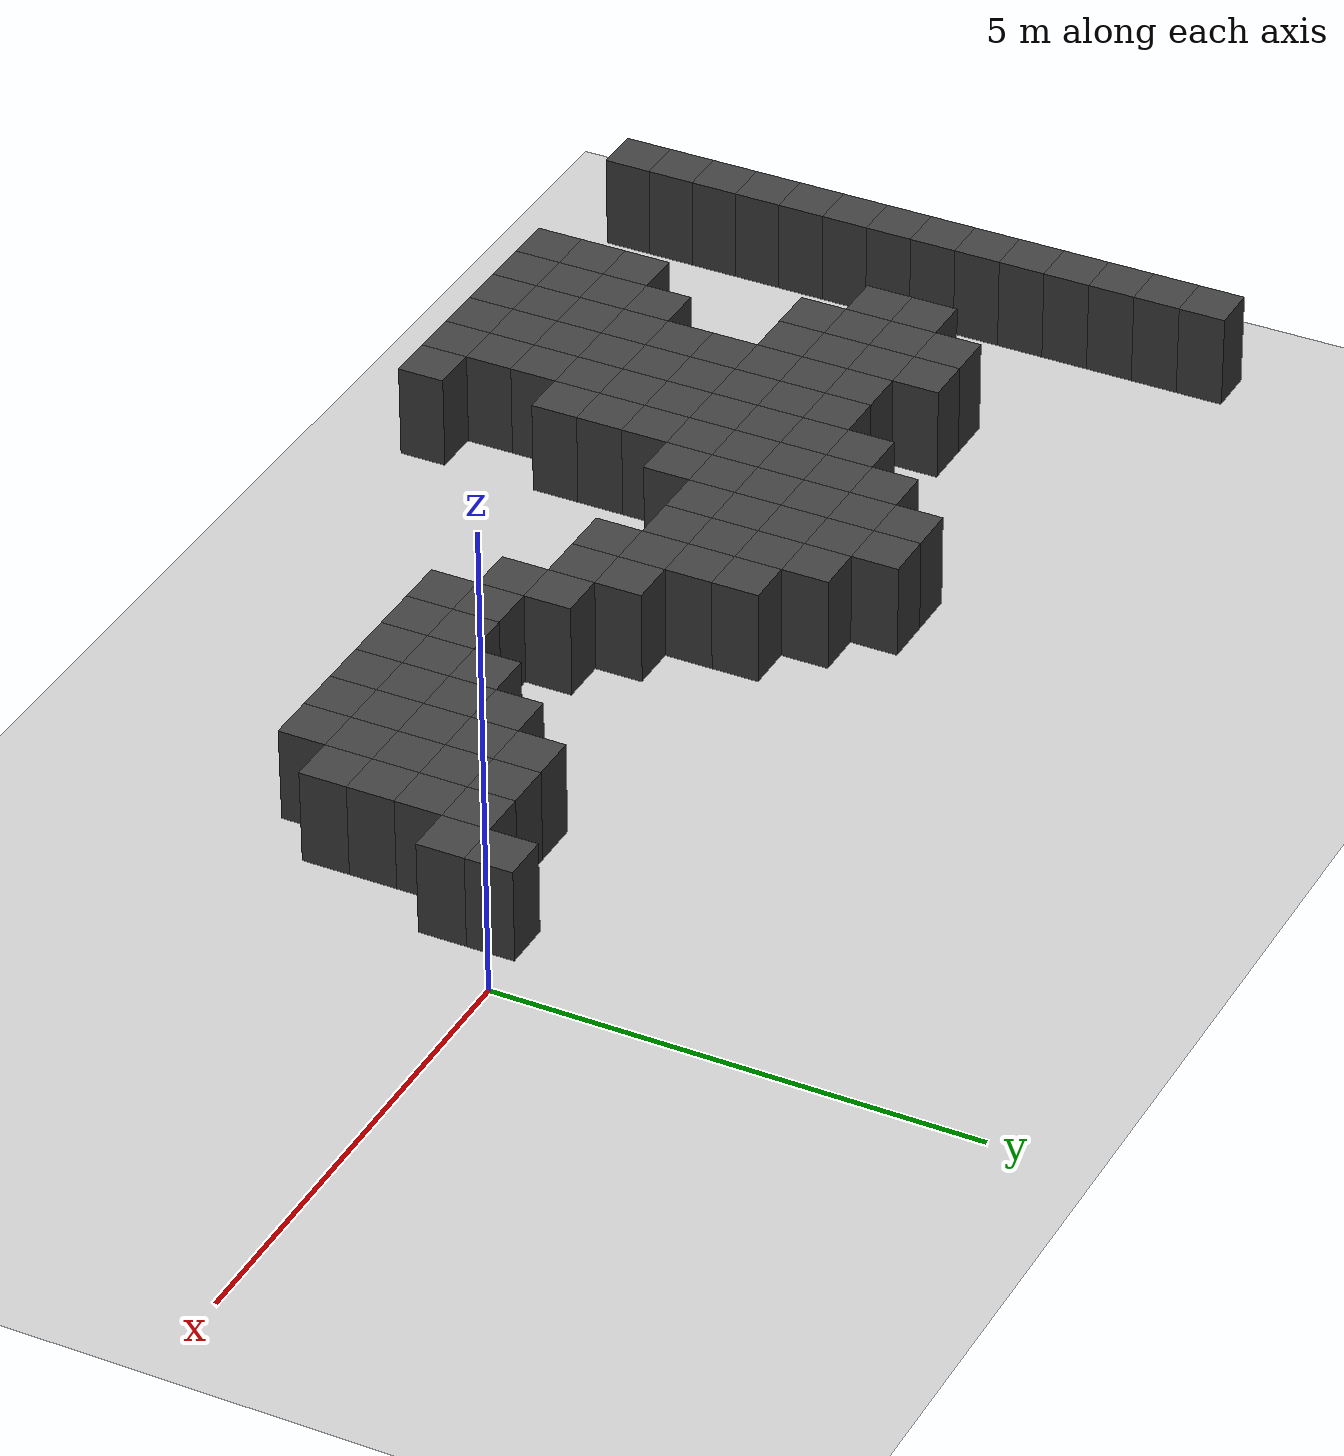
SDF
<sdf version="1.7">
 <world name="map_8074">
  <model name="ground_plane">
   <static>true</static>
   <link name="link">
    <collision name="collision">
     <geometry><plane><normal>0 0 1</normal><size>200 200</size></plane></geometry>
    </collision>
    <visual name="visual">
     <geometry><plane><normal>0 0 1</normal><size>200 200</size></plane></geometry>
     <material><ambient>0.8 0.8 0.8 1</ambient><diffuse>0.8 0.8 0.8 1</diffuse></material>
    </visual>
   </link>
  </model>
  <model name="maze_environment">
   <static>true</static>
   <link name="wall_325">
    <pose>-12.250 1.750 0.500 0 0 0</pose>
    <collision name="col"><geometry><box><size>0.5 0.5 1.0</size></box></geometry></collision>
    <visual name="vis">
     <geometry><box><size>0.5 0.5 1.0</size></box></geometry>
     <material><ambient>0.15 0.15 0.15 1</ambient><diffuse>0.25 0.25 0.25 1</diffuse></material>
    </visual>
   </link>
   <link name="wall_333">
    <pose>-12.250 1.250 0.500 0 0 0</pose>
    <collision name="col"><geometry><box><size>0.5 0.5 1.0</size></box></geometry></collision>
    <visual name="vis">
     <geometry><box><size>0.5 0.5 1.0</size></box></geometry>
     <material><ambient>0.15 0.15 0.15 1</ambient><diffuse>0.25 0.25 0.25 1</diffuse></material>
    </visual>
   </link>
   <link name="wall_338">
    <pose>-12.250 0.750 0.500 0 0 0</pose>
    <collision name="col"><geometry><box><size>0.5 0.5 1.0</size></box></geometry></collision>
    <visual name="vis">
     <geometry><box><size>0.5 0.5 1.0</size></box></geometry>
     <material><ambient>0.15 0.15 0.15 1</ambient><diffuse>0.25 0.25 0.25 1</diffuse></material>
    </visual>
   </link>
   <link name="wall_339">
    <pose>-7.250 0.750 0.500 0 0 0</pose>
    <collision name="col"><geometry><box><size>0.5 0.5 1.0</size></box></geometry></collision>
    <visual name="vis">
     <geometry><box><size>0.5 0.5 1.0</size></box></geometry>
     <material><ambient>0.15 0.15 0.15 1</ambient><diffuse>0.25 0.25 0.25 1</diffuse></material>
    </visual>
   </link>
   <link name="wall_340">
    <pose>-6.750 0.750 0.500 0 0 0</pose>
    <collision name="col"><geometry><box><size>0.5 0.5 1.0</size></box></geometry></collision>
    <visual name="vis">
     <geometry><box><size>0.5 0.5 1.0</size></box></geometry>
     <material><ambient>0.15 0.15 0.15 1</ambient><diffuse>0.25 0.25 0.25 1</diffuse></material>
    </visual>
   </link>
   <link name="wall_342">
    <pose>-12.250 0.250 0.500 0 0 0</pose>
    <collision name="col"><geometry><box><size>0.5 0.5 1.0</size></box></geometry></collision>
    <visual name="vis">
     <geometry><box><size>0.5 0.5 1.0</size></box></geometry>
     <material><ambient>0.15 0.15 0.15 1</ambient><diffuse>0.25 0.25 0.25 1</diffuse></material>
    </visual>
   </link>
   <link name="wall_343">
    <pose>-7.750 0.250 0.500 0 0 0</pose>
    <collision name="col"><geometry><box><size>0.5 0.5 1.0</size></box></geometry></collision>
    <visual name="vis">
     <geometry><box><size>0.5 0.5 1.0</size></box></geometry>
     <material><ambient>0.15 0.15 0.15 1</ambient><diffuse>0.25 0.25 0.25 1</diffuse></material>
    </visual>
   </link>
   <link name="wall_344">
    <pose>-7.250 0.250 0.500 0 0 0</pose>
    <collision name="col"><geometry><box><size>0.5 0.5 1.0</size></box></geometry></collision>
    <visual name="vis">
     <geometry><box><size>0.5 0.5 1.0</size></box></geometry>
     <material><ambient>0.15 0.15 0.15 1</ambient><diffuse>0.25 0.25 0.25 1</diffuse></material>
    </visual>
   </link>
   <link name="wall_345">
    <pose>-6.750 0.250 0.500 0 0 0</pose>
    <collision name="col"><geometry><box><size>0.5 0.5 1.0</size></box></geometry></collision>
    <visual name="vis">
     <geometry><box><size>0.5 0.5 1.0</size></box></geometry>
     <material><ambient>0.15 0.15 0.15 1</ambient><diffuse>0.25 0.25 0.25 1</diffuse></material>
    </visual>
   </link>
   <link name="wall_346">
    <pose>-6.250 0.250 0.500 0 0 0</pose>
    <collision name="col"><geometry><box><size>0.5 0.5 1.0</size></box></geometry></collision>
    <visual name="vis">
     <geometry><box><size>0.5 0.5 1.0</size></box></geometry>
     <material><ambient>0.15 0.15 0.15 1</ambient><diffuse>0.25 0.25 0.25 1</diffuse></material>
    </visual>
   </link>
   <link name="wall_351">
    <pose>-12.250 -0.250 0.500 0 0 0</pose>
    <collision name="col"><geometry><box><size>0.5 0.5 1.0</size></box></geometry></collision>
    <visual name="vis">
     <geometry><box><size>0.5 0.5 1.0</size></box></geometry>
     <material><ambient>0.15 0.15 0.15 1</ambient><diffuse>0.25 0.25 0.25 1</diffuse></material>
    </visual>
   </link>
   <link name="wall_352">
    <pose>-10.250 -0.250 0.500 0 0 0</pose>
    <collision name="col"><geometry><box><size>0.5 0.5 1.0</size></box></geometry></collision>
    <visual name="vis">
     <geometry><box><size>0.5 0.5 1.0</size></box></geometry>
     <material><ambient>0.15 0.15 0.15 1</ambient><diffuse>0.25 0.25 0.25 1</diffuse></material>
    </visual>
   </link>
   <link name="wall_353">
    <pose>-9.750 -0.250 0.500 0 0 0</pose>
    <collision name="col"><geometry><box><size>0.5 0.5 1.0</size></box></geometry></collision>
    <visual name="vis">
     <geometry><box><size>0.5 0.5 1.0</size></box></geometry>
     <material><ambient>0.15 0.15 0.15 1</ambient><diffuse>0.25 0.25 0.25 1</diffuse></material>
    </visual>
   </link>
   <link name="wall_354">
    <pose>-8.250 -0.250 0.500 0 0 0</pose>
    <collision name="col"><geometry><box><size>0.5 0.5 1.0</size></box></geometry></collision>
    <visual name="vis">
     <geometry><box><size>0.5 0.5 1.0</size></box></geometry>
     <material><ambient>0.15 0.15 0.15 1</ambient><diffuse>0.25 0.25 0.25 1</diffuse></material>
    </visual>
   </link>
   <link name="wall_355">
    <pose>-7.750 -0.250 0.500 0 0 0</pose>
    <collision name="col"><geometry><box><size>0.5 0.5 1.0</size></box></geometry></collision>
    <visual name="vis">
     <geometry><box><size>0.5 0.5 1.0</size></box></geometry>
     <material><ambient>0.15 0.15 0.15 1</ambient><diffuse>0.25 0.25 0.25 1</diffuse></material>
    </visual>
   </link>
   <link name="wall_356">
    <pose>-7.250 -0.250 0.500 0 0 0</pose>
    <collision name="col"><geometry><box><size>0.5 0.5 1.0</size></box></geometry></collision>
    <visual name="vis">
     <geometry><box><size>0.5 0.5 1.0</size></box></geometry>
     <material><ambient>0.15 0.15 0.15 1</ambient><diffuse>0.25 0.25 0.25 1</diffuse></material>
    </visual>
   </link>
   <link name="wall_357">
    <pose>-6.750 -0.250 0.500 0 0 0</pose>
    <collision name="col"><geometry><box><size>0.5 0.5 1.0</size></box></geometry></collision>
    <visual name="vis">
     <geometry><box><size>0.5 0.5 1.0</size></box></geometry>
     <material><ambient>0.15 0.15 0.15 1</ambient><diffuse>0.25 0.25 0.25 1</diffuse></material>
    </visual>
   </link>
   <link name="wall_358">
    <pose>-6.250 -0.250 0.500 0 0 0</pose>
    <collision name="col"><geometry><box><size>0.5 0.5 1.0</size></box></geometry></collision>
    <visual name="vis">
     <geometry><box><size>0.5 0.5 1.0</size></box></geometry>
     <material><ambient>0.15 0.15 0.15 1</ambient><diffuse>0.25 0.25 0.25 1</diffuse></material>
    </visual>
   </link>
   <link name="wall_359">
    <pose>-5.750 -0.250 0.500 0 0 0</pose>
    <collision name="col"><geometry><box><size>0.5 0.5 1.0</size></box></geometry></collision>
    <visual name="vis">
     <geometry><box><size>0.5 0.5 1.0</size></box></geometry>
     <material><ambient>0.15 0.15 0.15 1</ambient><diffuse>0.25 0.25 0.25 1</diffuse></material>
    </visual>
   </link>
   <link name="wall_360">
    <pose>-0.750 -0.250 0.500 0 0 0</pose>
    <collision name="col"><geometry><box><size>0.5 0.5 1.0</size></box></geometry></collision>
    <visual name="vis">
     <geometry><box><size>0.5 0.5 1.0</size></box></geometry>
     <material><ambient>0.15 0.15 0.15 1</ambient><diffuse>0.25 0.25 0.25 1</diffuse></material>
    </visual>
   </link>
   <link name="wall_372">
    <pose>-12.250 -0.750 0.500 0 0 0</pose>
    <collision name="col"><geometry><box><size>0.5 0.5 1.0</size></box></geometry></collision>
    <visual name="vis">
     <geometry><box><size>0.5 0.5 1.0</size></box></geometry>
     <material><ambient>0.15 0.15 0.15 1</ambient><diffuse>0.25 0.25 0.25 1</diffuse></material>
    </visual>
   </link>
   <link name="wall_373">
    <pose>-10.750 -0.750 0.500 0 0 0</pose>
    <collision name="col"><geometry><box><size>0.5 0.5 1.0</size></box></geometry></collision>
    <visual name="vis">
     <geometry><box><size>0.5 0.5 1.0</size></box></geometry>
     <material><ambient>0.15 0.15 0.15 1</ambient><diffuse>0.25 0.25 0.25 1</diffuse></material>
    </visual>
   </link>
   <link name="wall_374">
    <pose>-10.250 -0.750 0.500 0 0 0</pose>
    <collision name="col"><geometry><box><size>0.5 0.5 1.0</size></box></geometry></collision>
    <visual name="vis">
     <geometry><box><size>0.5 0.5 1.0</size></box></geometry>
     <material><ambient>0.15 0.15 0.15 1</ambient><diffuse>0.25 0.25 0.25 1</diffuse></material>
    </visual>
   </link>
   <link name="wall_375">
    <pose>-9.750 -0.750 0.500 0 0 0</pose>
    <collision name="col"><geometry><box><size>0.5 0.5 1.0</size></box></geometry></collision>
    <visual name="vis">
     <geometry><box><size>0.5 0.5 1.0</size></box></geometry>
     <material><ambient>0.15 0.15 0.15 1</ambient><diffuse>0.25 0.25 0.25 1</diffuse></material>
    </visual>
   </link>
   <link name="wall_376">
    <pose>-9.250 -0.750 0.500 0 0 0</pose>
    <collision name="col"><geometry><box><size>0.5 0.5 1.0</size></box></geometry></collision>
    <visual name="vis">
     <geometry><box><size>0.5 0.5 1.0</size></box></geometry>
     <material><ambient>0.15 0.15 0.15 1</ambient><diffuse>0.25 0.25 0.25 1</diffuse></material>
    </visual>
   </link>
   <link name="wall_377">
    <pose>-8.750 -0.750 0.500 0 0 0</pose>
    <collision name="col"><geometry><box><size>0.5 0.5 1.0</size></box></geometry></collision>
    <visual name="vis">
     <geometry><box><size>0.5 0.5 1.0</size></box></geometry>
     <material><ambient>0.15 0.15 0.15 1</ambient><diffuse>0.25 0.25 0.25 1</diffuse></material>
    </visual>
   </link>
   <link name="wall_378">
    <pose>-8.250 -0.750 0.500 0 0 0</pose>
    <collision name="col"><geometry><box><size>0.5 0.5 1.0</size></box></geometry></collision>
    <visual name="vis">
     <geometry><box><size>0.5 0.5 1.0</size></box></geometry>
     <material><ambient>0.15 0.15 0.15 1</ambient><diffuse>0.25 0.25 0.25 1</diffuse></material>
    </visual>
   </link>
   <link name="wall_379">
    <pose>-7.750 -0.750 0.500 0 0 0</pose>
    <collision name="col"><geometry><box><size>0.5 0.5 1.0</size></box></geometry></collision>
    <visual name="vis">
     <geometry><box><size>0.5 0.5 1.0</size></box></geometry>
     <material><ambient>0.15 0.15 0.15 1</ambient><diffuse>0.25 0.25 0.25 1</diffuse></material>
    </visual>
   </link>
   <link name="wall_380">
    <pose>-7.250 -0.750 0.500 0 0 0</pose>
    <collision name="col"><geometry><box><size>0.5 0.5 1.0</size></box></geometry></collision>
    <visual name="vis">
     <geometry><box><size>0.5 0.5 1.0</size></box></geometry>
     <material><ambient>0.15 0.15 0.15 1</ambient><diffuse>0.25 0.25 0.25 1</diffuse></material>
    </visual>
   </link>
   <link name="wall_381">
    <pose>-6.750 -0.750 0.500 0 0 0</pose>
    <collision name="col"><geometry><box><size>0.5 0.5 1.0</size></box></geometry></collision>
    <visual name="vis">
     <geometry><box><size>0.5 0.5 1.0</size></box></geometry>
     <material><ambient>0.15 0.15 0.15 1</ambient><diffuse>0.25 0.25 0.25 1</diffuse></material>
    </visual>
   </link>
   <link name="wall_382">
    <pose>-6.250 -0.750 0.500 0 0 0</pose>
    <collision name="col"><geometry><box><size>0.5 0.5 1.0</size></box></geometry></collision>
    <visual name="vis">
     <geometry><box><size>0.5 0.5 1.0</size></box></geometry>
     <material><ambient>0.15 0.15 0.15 1</ambient><diffuse>0.25 0.25 0.25 1</diffuse></material>
    </visual>
   </link>
   <link name="wall_383">
    <pose>-5.750 -0.750 0.500 0 0 0</pose>
    <collision name="col"><geometry><box><size>0.5 0.5 1.0</size></box></geometry></collision>
    <visual name="vis">
     <geometry><box><size>0.5 0.5 1.0</size></box></geometry>
     <material><ambient>0.15 0.15 0.15 1</ambient><diffuse>0.25 0.25 0.25 1</diffuse></material>
    </visual>
   </link>
   <link name="wall_384">
    <pose>-2.250 -0.750 0.500 0 0 0</pose>
    <collision name="col"><geometry><box><size>0.5 0.5 1.0</size></box></geometry></collision>
    <visual name="vis">
     <geometry><box><size>0.5 0.5 1.0</size></box></geometry>
     <material><ambient>0.15 0.15 0.15 1</ambient><diffuse>0.25 0.25 0.25 1</diffuse></material>
    </visual>
   </link>
   <link name="wall_385">
    <pose>-1.750 -0.750 0.500 0 0 0</pose>
    <collision name="col"><geometry><box><size>0.5 0.5 1.0</size></box></geometry></collision>
    <visual name="vis">
     <geometry><box><size>0.5 0.5 1.0</size></box></geometry>
     <material><ambient>0.15 0.15 0.15 1</ambient><diffuse>0.25 0.25 0.25 1</diffuse></material>
    </visual>
   </link>
   <link name="wall_386">
    <pose>-1.250 -0.750 0.500 0 0 0</pose>
    <collision name="col"><geometry><box><size>0.5 0.5 1.0</size></box></geometry></collision>
    <visual name="vis">
     <geometry><box><size>0.5 0.5 1.0</size></box></geometry>
     <material><ambient>0.15 0.15 0.15 1</ambient><diffuse>0.25 0.25 0.25 1</diffuse></material>
    </visual>
   </link>
   <link name="wall_387">
    <pose>-0.750 -0.750 0.500 0 0 0</pose>
    <collision name="col"><geometry><box><size>0.5 0.5 1.0</size></box></geometry></collision>
    <visual name="vis">
     <geometry><box><size>0.5 0.5 1.0</size></box></geometry>
     <material><ambient>0.15 0.15 0.15 1</ambient><diffuse>0.25 0.25 0.25 1</diffuse></material>
    </visual>
   </link>
   <link name="wall_401">
    <pose>-12.250 -1.250 0.500 0 0 0</pose>
    <collision name="col"><geometry><box><size>0.5 0.5 1.0</size></box></geometry></collision>
    <visual name="vis">
     <geometry><box><size>0.5 0.5 1.0</size></box></geometry>
     <material><ambient>0.15 0.15 0.15 1</ambient><diffuse>0.25 0.25 0.25 1</diffuse></material>
    </visual>
   </link>
   <link name="wall_402">
    <pose>-10.750 -1.250 0.500 0 0 0</pose>
    <collision name="col"><geometry><box><size>0.5 0.5 1.0</size></box></geometry></collision>
    <visual name="vis">
     <geometry><box><size>0.5 0.5 1.0</size></box></geometry>
     <material><ambient>0.15 0.15 0.15 1</ambient><diffuse>0.25 0.25 0.25 1</diffuse></material>
    </visual>
   </link>
   <link name="wall_403">
    <pose>-10.250 -1.250 0.500 0 0 0</pose>
    <collision name="col"><geometry><box><size>0.5 0.5 1.0</size></box></geometry></collision>
    <visual name="vis">
     <geometry><box><size>0.5 0.5 1.0</size></box></geometry>
     <material><ambient>0.15 0.15 0.15 1</ambient><diffuse>0.25 0.25 0.25 1</diffuse></material>
    </visual>
   </link>
   <link name="wall_404">
    <pose>-9.750 -1.250 0.500 0 0 0</pose>
    <collision name="col"><geometry><box><size>0.5 0.5 1.0</size></box></geometry></collision>
    <visual name="vis">
     <geometry><box><size>0.5 0.5 1.0</size></box></geometry>
     <material><ambient>0.15 0.15 0.15 1</ambient><diffuse>0.25 0.25 0.25 1</diffuse></material>
    </visual>
   </link>
   <link name="wall_405">
    <pose>-9.250 -1.250 0.500 0 0 0</pose>
    <collision name="col"><geometry><box><size>0.5 0.5 1.0</size></box></geometry></collision>
    <visual name="vis">
     <geometry><box><size>0.5 0.5 1.0</size></box></geometry>
     <material><ambient>0.15 0.15 0.15 1</ambient><diffuse>0.25 0.25 0.25 1</diffuse></material>
    </visual>
   </link>
   <link name="wall_406">
    <pose>-8.750 -1.250 0.500 0 0 0</pose>
    <collision name="col"><geometry><box><size>0.5 0.5 1.0</size></box></geometry></collision>
    <visual name="vis">
     <geometry><box><size>0.5 0.5 1.0</size></box></geometry>
     <material><ambient>0.15 0.15 0.15 1</ambient><diffuse>0.25 0.25 0.25 1</diffuse></material>
    </visual>
   </link>
   <link name="wall_407">
    <pose>-8.250 -1.250 0.500 0 0 0</pose>
    <collision name="col"><geometry><box><size>0.5 0.5 1.0</size></box></geometry></collision>
    <visual name="vis">
     <geometry><box><size>0.5 0.5 1.0</size></box></geometry>
     <material><ambient>0.15 0.15 0.15 1</ambient><diffuse>0.25 0.25 0.25 1</diffuse></material>
    </visual>
   </link>
   <link name="wall_408">
    <pose>-7.750 -1.250 0.500 0 0 0</pose>
    <collision name="col"><geometry><box><size>0.5 0.5 1.0</size></box></geometry></collision>
    <visual name="vis">
     <geometry><box><size>0.5 0.5 1.0</size></box></geometry>
     <material><ambient>0.15 0.15 0.15 1</ambient><diffuse>0.25 0.25 0.25 1</diffuse></material>
    </visual>
   </link>
   <link name="wall_409">
    <pose>-7.250 -1.250 0.500 0 0 0</pose>
    <collision name="col"><geometry><box><size>0.5 0.5 1.0</size></box></geometry></collision>
    <visual name="vis">
     <geometry><box><size>0.5 0.5 1.0</size></box></geometry>
     <material><ambient>0.15 0.15 0.15 1</ambient><diffuse>0.25 0.25 0.25 1</diffuse></material>
    </visual>
   </link>
   <link name="wall_410">
    <pose>-6.750 -1.250 0.500 0 0 0</pose>
    <collision name="col"><geometry><box><size>0.5 0.5 1.0</size></box></geometry></collision>
    <visual name="vis">
     <geometry><box><size>0.5 0.5 1.0</size></box></geometry>
     <material><ambient>0.15 0.15 0.15 1</ambient><diffuse>0.25 0.25 0.25 1</diffuse></material>
    </visual>
   </link>
   <link name="wall_411">
    <pose>-6.250 -1.250 0.500 0 0 0</pose>
    <collision name="col"><geometry><box><size>0.5 0.5 1.0</size></box></geometry></collision>
    <visual name="vis">
     <geometry><box><size>0.5 0.5 1.0</size></box></geometry>
     <material><ambient>0.15 0.15 0.15 1</ambient><diffuse>0.25 0.25 0.25 1</diffuse></material>
    </visual>
   </link>
   <link name="wall_412">
    <pose>-5.750 -1.250 0.500 0 0 0</pose>
    <collision name="col"><geometry><box><size>0.5 0.5 1.0</size></box></geometry></collision>
    <visual name="vis">
     <geometry><box><size>0.5 0.5 1.0</size></box></geometry>
     <material><ambient>0.15 0.15 0.15 1</ambient><diffuse>0.25 0.25 0.25 1</diffuse></material>
    </visual>
   </link>
   <link name="wall_413">
    <pose>-5.250 -1.250 0.500 0 0 0</pose>
    <collision name="col"><geometry><box><size>0.5 0.5 1.0</size></box></geometry></collision>
    <visual name="vis">
     <geometry><box><size>0.5 0.5 1.0</size></box></geometry>
     <material><ambient>0.15 0.15 0.15 1</ambient><diffuse>0.25 0.25 0.25 1</diffuse></material>
    </visual>
   </link>
   <link name="wall_414">
    <pose>-2.750 -1.250 0.500 0 0 0</pose>
    <collision name="col"><geometry><box><size>0.5 0.5 1.0</size></box></geometry></collision>
    <visual name="vis">
     <geometry><box><size>0.5 0.5 1.0</size></box></geometry>
     <material><ambient>0.15 0.15 0.15 1</ambient><diffuse>0.25 0.25 0.25 1</diffuse></material>
    </visual>
   </link>
   <link name="wall_415">
    <pose>-2.250 -1.250 0.500 0 0 0</pose>
    <collision name="col"><geometry><box><size>0.5 0.5 1.0</size></box></geometry></collision>
    <visual name="vis">
     <geometry><box><size>0.5 0.5 1.0</size></box></geometry>
     <material><ambient>0.15 0.15 0.15 1</ambient><diffuse>0.25 0.25 0.25 1</diffuse></material>
    </visual>
   </link>
   <link name="wall_416">
    <pose>-1.750 -1.250 0.500 0 0 0</pose>
    <collision name="col"><geometry><box><size>0.5 0.5 1.0</size></box></geometry></collision>
    <visual name="vis">
     <geometry><box><size>0.5 0.5 1.0</size></box></geometry>
     <material><ambient>0.15 0.15 0.15 1</ambient><diffuse>0.25 0.25 0.25 1</diffuse></material>
    </visual>
   </link>
   <link name="wall_417">
    <pose>-1.250 -1.250 0.500 0 0 0</pose>
    <collision name="col"><geometry><box><size>0.5 0.5 1.0</size></box></geometry></collision>
    <visual name="vis">
     <geometry><box><size>0.5 0.5 1.0</size></box></geometry>
     <material><ambient>0.15 0.15 0.15 1</ambient><diffuse>0.25 0.25 0.25 1</diffuse></material>
    </visual>
   </link>
   <link name="wall_428">
    <pose>-12.250 -1.750 0.500 0 0 0</pose>
    <collision name="col"><geometry><box><size>0.5 0.5 1.0</size></box></geometry></collision>
    <visual name="vis">
     <geometry><box><size>0.5 0.5 1.0</size></box></geometry>
     <material><ambient>0.15 0.15 0.15 1</ambient><diffuse>0.25 0.25 0.25 1</diffuse></material>
    </visual>
   </link>
   <link name="wall_429">
    <pose>-10.250 -1.750 0.500 0 0 0</pose>
    <collision name="col"><geometry><box><size>0.5 0.5 1.0</size></box></geometry></collision>
    <visual name="vis">
     <geometry><box><size>0.5 0.5 1.0</size></box></geometry>
     <material><ambient>0.15 0.15 0.15 1</ambient><diffuse>0.25 0.25 0.25 1</diffuse></material>
    </visual>
   </link>
   <link name="wall_430">
    <pose>-9.750 -1.750 0.500 0 0 0</pose>
    <collision name="col"><geometry><box><size>0.5 0.5 1.0</size></box></geometry></collision>
    <visual name="vis">
     <geometry><box><size>0.5 0.5 1.0</size></box></geometry>
     <material><ambient>0.15 0.15 0.15 1</ambient><diffuse>0.25 0.25 0.25 1</diffuse></material>
    </visual>
   </link>
   <link name="wall_431">
    <pose>-9.250 -1.750 0.500 0 0 0</pose>
    <collision name="col"><geometry><box><size>0.5 0.5 1.0</size></box></geometry></collision>
    <visual name="vis">
     <geometry><box><size>0.5 0.5 1.0</size></box></geometry>
     <material><ambient>0.15 0.15 0.15 1</ambient><diffuse>0.25 0.25 0.25 1</diffuse></material>
    </visual>
   </link>
   <link name="wall_432">
    <pose>-8.750 -1.750 0.500 0 0 0</pose>
    <collision name="col"><geometry><box><size>0.5 0.5 1.0</size></box></geometry></collision>
    <visual name="vis">
     <geometry><box><size>0.5 0.5 1.0</size></box></geometry>
     <material><ambient>0.15 0.15 0.15 1</ambient><diffuse>0.25 0.25 0.25 1</diffuse></material>
    </visual>
   </link>
   <link name="wall_433">
    <pose>-8.250 -1.750 0.500 0 0 0</pose>
    <collision name="col"><geometry><box><size>0.5 0.5 1.0</size></box></geometry></collision>
    <visual name="vis">
     <geometry><box><size>0.5 0.5 1.0</size></box></geometry>
     <material><ambient>0.15 0.15 0.15 1</ambient><diffuse>0.25 0.25 0.25 1</diffuse></material>
    </visual>
   </link>
   <link name="wall_434">
    <pose>-7.750 -1.750 0.500 0 0 0</pose>
    <collision name="col"><geometry><box><size>0.5 0.5 1.0</size></box></geometry></collision>
    <visual name="vis">
     <geometry><box><size>0.5 0.5 1.0</size></box></geometry>
     <material><ambient>0.15 0.15 0.15 1</ambient><diffuse>0.25 0.25 0.25 1</diffuse></material>
    </visual>
   </link>
   <link name="wall_435">
    <pose>-7.250 -1.750 0.500 0 0 0</pose>
    <collision name="col"><geometry><box><size>0.5 0.5 1.0</size></box></geometry></collision>
    <visual name="vis">
     <geometry><box><size>0.5 0.5 1.0</size></box></geometry>
     <material><ambient>0.15 0.15 0.15 1</ambient><diffuse>0.25 0.25 0.25 1</diffuse></material>
    </visual>
   </link>
   <link name="wall_436">
    <pose>-5.750 -1.750 0.500 0 0 0</pose>
    <collision name="col"><geometry><box><size>0.5 0.5 1.0</size></box></geometry></collision>
    <visual name="vis">
     <geometry><box><size>0.5 0.5 1.0</size></box></geometry>
     <material><ambient>0.15 0.15 0.15 1</ambient><diffuse>0.25 0.25 0.25 1</diffuse></material>
    </visual>
   </link>
   <link name="wall_437">
    <pose>-5.250 -1.750 0.500 0 0 0</pose>
    <collision name="col"><geometry><box><size>0.5 0.5 1.0</size></box></geometry></collision>
    <visual name="vis">
     <geometry><box><size>0.5 0.5 1.0</size></box></geometry>
     <material><ambient>0.15 0.15 0.15 1</ambient><diffuse>0.25 0.25 0.25 1</diffuse></material>
    </visual>
   </link>
   <link name="wall_438">
    <pose>-4.750 -1.750 0.500 0 0 0</pose>
    <collision name="col"><geometry><box><size>0.5 0.5 1.0</size></box></geometry></collision>
    <visual name="vis">
     <geometry><box><size>0.5 0.5 1.0</size></box></geometry>
     <material><ambient>0.15 0.15 0.15 1</ambient><diffuse>0.25 0.25 0.25 1</diffuse></material>
    </visual>
   </link>
   <link name="wall_439">
    <pose>-3.250 -1.750 0.500 0 0 0</pose>
    <collision name="col"><geometry><box><size>0.5 0.5 1.0</size></box></geometry></collision>
    <visual name="vis">
     <geometry><box><size>0.5 0.5 1.0</size></box></geometry>
     <material><ambient>0.15 0.15 0.15 1</ambient><diffuse>0.25 0.25 0.25 1</diffuse></material>
    </visual>
   </link>
   <link name="wall_440">
    <pose>-2.750 -1.750 0.500 0 0 0</pose>
    <collision name="col"><geometry><box><size>0.5 0.5 1.0</size></box></geometry></collision>
    <visual name="vis">
     <geometry><box><size>0.5 0.5 1.0</size></box></geometry>
     <material><ambient>0.15 0.15 0.15 1</ambient><diffuse>0.25 0.25 0.25 1</diffuse></material>
    </visual>
   </link>
   <link name="wall_441">
    <pose>-2.250 -1.750 0.500 0 0 0</pose>
    <collision name="col"><geometry><box><size>0.5 0.5 1.0</size></box></geometry></collision>
    <visual name="vis">
     <geometry><box><size>0.5 0.5 1.0</size></box></geometry>
     <material><ambient>0.15 0.15 0.15 1</ambient><diffuse>0.25 0.25 0.25 1</diffuse></material>
    </visual>
   </link>
   <link name="wall_442">
    <pose>-1.750 -1.750 0.500 0 0 0</pose>
    <collision name="col"><geometry><box><size>0.5 0.5 1.0</size></box></geometry></collision>
    <visual name="vis">
     <geometry><box><size>0.5 0.5 1.0</size></box></geometry>
     <material><ambient>0.15 0.15 0.15 1</ambient><diffuse>0.25 0.25 0.25 1</diffuse></material>
    </visual>
   </link>
   <link name="wall_443">
    <pose>-1.250 -1.750 0.500 0 0 0</pose>
    <collision name="col"><geometry><box><size>0.5 0.5 1.0</size></box></geometry></collision>
    <visual name="vis">
     <geometry><box><size>0.5 0.5 1.0</size></box></geometry>
     <material><ambient>0.15 0.15 0.15 1</ambient><diffuse>0.25 0.25 0.25 1</diffuse></material>
    </visual>
   </link>
   <link name="wall_450">
    <pose>-12.250 -2.250 0.500 0 0 0</pose>
    <collision name="col"><geometry><box><size>0.5 0.5 1.0</size></box></geometry></collision>
    <visual name="vis">
     <geometry><box><size>0.5 0.5 1.0</size></box></geometry>
     <material><ambient>0.15 0.15 0.15 1</ambient><diffuse>0.25 0.25 0.25 1</diffuse></material>
    </visual>
   </link>
   <link name="wall_451">
    <pose>-9.250 -2.250 0.500 0 0 0</pose>
    <collision name="col"><geometry><box><size>0.5 0.5 1.0</size></box></geometry></collision>
    <visual name="vis">
     <geometry><box><size>0.5 0.5 1.0</size></box></geometry>
     <material><ambient>0.15 0.15 0.15 1</ambient><diffuse>0.25 0.25 0.25 1</diffuse></material>
    </visual>
   </link>
   <link name="wall_452">
    <pose>-8.750 -2.250 0.500 0 0 0</pose>
    <collision name="col"><geometry><box><size>0.5 0.5 1.0</size></box></geometry></collision>
    <visual name="vis">
     <geometry><box><size>0.5 0.5 1.0</size></box></geometry>
     <material><ambient>0.15 0.15 0.15 1</ambient><diffuse>0.25 0.25 0.25 1</diffuse></material>
    </visual>
   </link>
   <link name="wall_453">
    <pose>-8.250 -2.250 0.500 0 0 0</pose>
    <collision name="col"><geometry><box><size>0.5 0.5 1.0</size></box></geometry></collision>
    <visual name="vis">
     <geometry><box><size>0.5 0.5 1.0</size></box></geometry>
     <material><ambient>0.15 0.15 0.15 1</ambient><diffuse>0.25 0.25 0.25 1</diffuse></material>
    </visual>
   </link>
   <link name="wall_454">
    <pose>-7.750 -2.250 0.500 0 0 0</pose>
    <collision name="col"><geometry><box><size>0.5 0.5 1.0</size></box></geometry></collision>
    <visual name="vis">
     <geometry><box><size>0.5 0.5 1.0</size></box></geometry>
     <material><ambient>0.15 0.15 0.15 1</ambient><diffuse>0.25 0.25 0.25 1</diffuse></material>
    </visual>
   </link>
   <link name="wall_455">
    <pose>-4.750 -2.250 0.500 0 0 0</pose>
    <collision name="col"><geometry><box><size>0.5 0.5 1.0</size></box></geometry></collision>
    <visual name="vis">
     <geometry><box><size>0.5 0.5 1.0</size></box></geometry>
     <material><ambient>0.15 0.15 0.15 1</ambient><diffuse>0.25 0.25 0.25 1</diffuse></material>
    </visual>
   </link>
   <link name="wall_456">
    <pose>-4.250 -2.250 0.500 0 0 0</pose>
    <collision name="col"><geometry><box><size>0.5 0.5 1.0</size></box></geometry></collision>
    <visual name="vis">
     <geometry><box><size>0.5 0.5 1.0</size></box></geometry>
     <material><ambient>0.15 0.15 0.15 1</ambient><diffuse>0.25 0.25 0.25 1</diffuse></material>
    </visual>
   </link>
   <link name="wall_457">
    <pose>-3.750 -2.250 0.500 0 0 0</pose>
    <collision name="col"><geometry><box><size>0.5 0.5 1.0</size></box></geometry></collision>
    <visual name="vis">
     <geometry><box><size>0.5 0.5 1.0</size></box></geometry>
     <material><ambient>0.15 0.15 0.15 1</ambient><diffuse>0.25 0.25 0.25 1</diffuse></material>
    </visual>
   </link>
   <link name="wall_458">
    <pose>-3.250 -2.250 0.500 0 0 0</pose>
    <collision name="col"><geometry><box><size>0.5 0.5 1.0</size></box></geometry></collision>
    <visual name="vis">
     <geometry><box><size>0.5 0.5 1.0</size></box></geometry>
     <material><ambient>0.15 0.15 0.15 1</ambient><diffuse>0.25 0.25 0.25 1</diffuse></material>
    </visual>
   </link>
   <link name="wall_459">
    <pose>-2.750 -2.250 0.500 0 0 0</pose>
    <collision name="col"><geometry><box><size>0.5 0.5 1.0</size></box></geometry></collision>
    <visual name="vis">
     <geometry><box><size>0.5 0.5 1.0</size></box></geometry>
     <material><ambient>0.15 0.15 0.15 1</ambient><diffuse>0.25 0.25 0.25 1</diffuse></material>
    </visual>
   </link>
   <link name="wall_460">
    <pose>-2.250 -2.250 0.500 0 0 0</pose>
    <collision name="col"><geometry><box><size>0.5 0.5 1.0</size></box></geometry></collision>
    <visual name="vis">
     <geometry><box><size>0.5 0.5 1.0</size></box></geometry>
     <material><ambient>0.15 0.15 0.15 1</ambient><diffuse>0.25 0.25 0.25 1</diffuse></material>
    </visual>
   </link>
   <link name="wall_461">
    <pose>-1.750 -2.250 0.500 0 0 0</pose>
    <collision name="col"><geometry><box><size>0.5 0.5 1.0</size></box></geometry></collision>
    <visual name="vis">
     <geometry><box><size>0.5 0.5 1.0</size></box></geometry>
     <material><ambient>0.15 0.15 0.15 1</ambient><diffuse>0.25 0.25 0.25 1</diffuse></material>
    </visual>
   </link>
   <link name="wall_462">
    <pose>-1.250 -2.250 0.500 0 0 0</pose>
    <collision name="col"><geometry><box><size>0.5 0.5 1.0</size></box></geometry></collision>
    <visual name="vis">
     <geometry><box><size>0.5 0.5 1.0</size></box></geometry>
     <material><ambient>0.15 0.15 0.15 1</ambient><diffuse>0.25 0.25 0.25 1</diffuse></material>
    </visual>
   </link>
   <link name="wall_471">
    <pose>-12.250 -2.750 0.500 0 0 0</pose>
    <collision name="col"><geometry><box><size>0.5 0.5 1.0</size></box></geometry></collision>
    <visual name="vis">
     <geometry><box><size>0.5 0.5 1.0</size></box></geometry>
     <material><ambient>0.15 0.15 0.15 1</ambient><diffuse>0.25 0.25 0.25 1</diffuse></material>
    </visual>
   </link>
   <link name="wall_472">
    <pose>-9.250 -2.750 0.500 0 0 0</pose>
    <collision name="col"><geometry><box><size>0.5 0.5 1.0</size></box></geometry></collision>
    <visual name="vis">
     <geometry><box><size>0.5 0.5 1.0</size></box></geometry>
     <material><ambient>0.15 0.15 0.15 1</ambient><diffuse>0.25 0.25 0.25 1</diffuse></material>
    </visual>
   </link>
   <link name="wall_473">
    <pose>-8.750 -2.750 0.500 0 0 0</pose>
    <collision name="col"><geometry><box><size>0.5 0.5 1.0</size></box></geometry></collision>
    <visual name="vis">
     <geometry><box><size>0.5 0.5 1.0</size></box></geometry>
     <material><ambient>0.15 0.15 0.15 1</ambient><diffuse>0.25 0.25 0.25 1</diffuse></material>
    </visual>
   </link>
   <link name="wall_474">
    <pose>-8.250 -2.750 0.500 0 0 0</pose>
    <collision name="col"><geometry><box><size>0.5 0.5 1.0</size></box></geometry></collision>
    <visual name="vis">
     <geometry><box><size>0.5 0.5 1.0</size></box></geometry>
     <material><ambient>0.15 0.15 0.15 1</ambient><diffuse>0.25 0.25 0.25 1</diffuse></material>
    </visual>
   </link>
   <link name="wall_475">
    <pose>-7.750 -2.750 0.500 0 0 0</pose>
    <collision name="col"><geometry><box><size>0.5 0.5 1.0</size></box></geometry></collision>
    <visual name="vis">
     <geometry><box><size>0.5 0.5 1.0</size></box></geometry>
     <material><ambient>0.15 0.15 0.15 1</ambient><diffuse>0.25 0.25 0.25 1</diffuse></material>
    </visual>
   </link>
   <link name="wall_476">
    <pose>-4.250 -2.750 0.500 0 0 0</pose>
    <collision name="col"><geometry><box><size>0.5 0.5 1.0</size></box></geometry></collision>
    <visual name="vis">
     <geometry><box><size>0.5 0.5 1.0</size></box></geometry>
     <material><ambient>0.15 0.15 0.15 1</ambient><diffuse>0.25 0.25 0.25 1</diffuse></material>
    </visual>
   </link>
   <link name="wall_477">
    <pose>-3.750 -2.750 0.500 0 0 0</pose>
    <collision name="col"><geometry><box><size>0.5 0.5 1.0</size></box></geometry></collision>
    <visual name="vis">
     <geometry><box><size>0.5 0.5 1.0</size></box></geometry>
     <material><ambient>0.15 0.15 0.15 1</ambient><diffuse>0.25 0.25 0.25 1</diffuse></material>
    </visual>
   </link>
   <link name="wall_478">
    <pose>-3.250 -2.750 0.500 0 0 0</pose>
    <collision name="col"><geometry><box><size>0.5 0.5 1.0</size></box></geometry></collision>
    <visual name="vis">
     <geometry><box><size>0.5 0.5 1.0</size></box></geometry>
     <material><ambient>0.15 0.15 0.15 1</ambient><diffuse>0.25 0.25 0.25 1</diffuse></material>
    </visual>
   </link>
   <link name="wall_479">
    <pose>-2.750 -2.750 0.500 0 0 0</pose>
    <collision name="col"><geometry><box><size>0.5 0.5 1.0</size></box></geometry></collision>
    <visual name="vis">
     <geometry><box><size>0.5 0.5 1.0</size></box></geometry>
     <material><ambient>0.15 0.15 0.15 1</ambient><diffuse>0.25 0.25 0.25 1</diffuse></material>
    </visual>
   </link>
   <link name="wall_480">
    <pose>-2.250 -2.750 0.500 0 0 0</pose>
    <collision name="col"><geometry><box><size>0.5 0.5 1.0</size></box></geometry></collision>
    <visual name="vis">
     <geometry><box><size>0.5 0.5 1.0</size></box></geometry>
     <material><ambient>0.15 0.15 0.15 1</ambient><diffuse>0.25 0.25 0.25 1</diffuse></material>
    </visual>
   </link>
   <link name="wall_481">
    <pose>-1.750 -2.750 0.500 0 0 0</pose>
    <collision name="col"><geometry><box><size>0.5 0.5 1.0</size></box></geometry></collision>
    <visual name="vis">
     <geometry><box><size>0.5 0.5 1.0</size></box></geometry>
     <material><ambient>0.15 0.15 0.15 1</ambient><diffuse>0.25 0.25 0.25 1</diffuse></material>
    </visual>
   </link>
   <link name="wall_493">
    <pose>-12.250 -3.250 0.500 0 0 0</pose>
    <collision name="col"><geometry><box><size>0.5 0.5 1.0</size></box></geometry></collision>
    <visual name="vis">
     <geometry><box><size>0.5 0.5 1.0</size></box></geometry>
     <material><ambient>0.15 0.15 0.15 1</ambient><diffuse>0.25 0.25 0.25 1</diffuse></material>
    </visual>
   </link>
   <link name="wall_494">
    <pose>-9.750 -3.250 0.500 0 0 0</pose>
    <collision name="col"><geometry><box><size>0.5 0.5 1.0</size></box></geometry></collision>
    <visual name="vis">
     <geometry><box><size>0.5 0.5 1.0</size></box></geometry>
     <material><ambient>0.15 0.15 0.15 1</ambient><diffuse>0.25 0.25 0.25 1</diffuse></material>
    </visual>
   </link>
   <link name="wall_495">
    <pose>-9.250 -3.250 0.500 0 0 0</pose>
    <collision name="col"><geometry><box><size>0.5 0.5 1.0</size></box></geometry></collision>
    <visual name="vis">
     <geometry><box><size>0.5 0.5 1.0</size></box></geometry>
     <material><ambient>0.15 0.15 0.15 1</ambient><diffuse>0.25 0.25 0.25 1</diffuse></material>
    </visual>
   </link>
   <link name="wall_496">
    <pose>-8.750 -3.250 0.500 0 0 0</pose>
    <collision name="col"><geometry><box><size>0.5 0.5 1.0</size></box></geometry></collision>
    <visual name="vis">
     <geometry><box><size>0.5 0.5 1.0</size></box></geometry>
     <material><ambient>0.15 0.15 0.15 1</ambient><diffuse>0.25 0.25 0.25 1</diffuse></material>
    </visual>
   </link>
   <link name="wall_497">
    <pose>-8.250 -3.250 0.500 0 0 0</pose>
    <collision name="col"><geometry><box><size>0.5 0.5 1.0</size></box></geometry></collision>
    <visual name="vis">
     <geometry><box><size>0.5 0.5 1.0</size></box></geometry>
     <material><ambient>0.15 0.15 0.15 1</ambient><diffuse>0.25 0.25 0.25 1</diffuse></material>
    </visual>
   </link>
   <link name="wall_498">
    <pose>-7.750 -3.250 0.500 0 0 0</pose>
    <collision name="col"><geometry><box><size>0.5 0.5 1.0</size></box></geometry></collision>
    <visual name="vis">
     <geometry><box><size>0.5 0.5 1.0</size></box></geometry>
     <material><ambient>0.15 0.15 0.15 1</ambient><diffuse>0.25 0.25 0.25 1</diffuse></material>
    </visual>
   </link>
   <link name="wall_516">
    <pose>-12.250 -3.750 0.500 0 0 0</pose>
    <collision name="col"><geometry><box><size>0.5 0.5 1.0</size></box></geometry></collision>
    <visual name="vis">
     <geometry><box><size>0.5 0.5 1.0</size></box></geometry>
     <material><ambient>0.15 0.15 0.15 1</ambient><diffuse>0.25 0.25 0.25 1</diffuse></material>
    </visual>
   </link>
   <link name="wall_517">
    <pose>-10.250 -3.750 0.500 0 0 0</pose>
    <collision name="col"><geometry><box><size>0.5 0.5 1.0</size></box></geometry></collision>
    <visual name="vis">
     <geometry><box><size>0.5 0.5 1.0</size></box></geometry>
     <material><ambient>0.15 0.15 0.15 1</ambient><diffuse>0.25 0.25 0.25 1</diffuse></material>
    </visual>
   </link>
   <link name="wall_518">
    <pose>-9.750 -3.750 0.500 0 0 0</pose>
    <collision name="col"><geometry><box><size>0.5 0.5 1.0</size></box></geometry></collision>
    <visual name="vis">
     <geometry><box><size>0.5 0.5 1.0</size></box></geometry>
     <material><ambient>0.15 0.15 0.15 1</ambient><diffuse>0.25 0.25 0.25 1</diffuse></material>
    </visual>
   </link>
   <link name="wall_519">
    <pose>-9.250 -3.750 0.500 0 0 0</pose>
    <collision name="col"><geometry><box><size>0.5 0.5 1.0</size></box></geometry></collision>
    <visual name="vis">
     <geometry><box><size>0.5 0.5 1.0</size></box></geometry>
     <material><ambient>0.15 0.15 0.15 1</ambient><diffuse>0.25 0.25 0.25 1</diffuse></material>
    </visual>
   </link>
   <link name="wall_520">
    <pose>-8.750 -3.750 0.500 0 0 0</pose>
    <collision name="col"><geometry><box><size>0.5 0.5 1.0</size></box></geometry></collision>
    <visual name="vis">
     <geometry><box><size>0.5 0.5 1.0</size></box></geometry>
     <material><ambient>0.15 0.15 0.15 1</ambient><diffuse>0.25 0.25 0.25 1</diffuse></material>
    </visual>
   </link>
   <link name="wall_521">
    <pose>-8.250 -3.750 0.500 0 0 0</pose>
    <collision name="col"><geometry><box><size>0.5 0.5 1.0</size></box></geometry></collision>
    <visual name="vis">
     <geometry><box><size>0.5 0.5 1.0</size></box></geometry>
     <material><ambient>0.15 0.15 0.15 1</ambient><diffuse>0.25 0.25 0.25 1</diffuse></material>
    </visual>
   </link>
   <link name="wall_546">
    <pose>-12.250 -4.250 0.500 0 0 0</pose>
    <collision name="col"><geometry><box><size>0.5 0.5 1.0</size></box></geometry></collision>
    <visual name="vis">
     <geometry><box><size>0.5 0.5 1.0</size></box></geometry>
     <material><ambient>0.15 0.15 0.15 1</ambient><diffuse>0.25 0.25 0.25 1</diffuse></material>
    </visual>
   </link>
   <link name="wall_547">
    <pose>-10.250 -4.250 0.500 0 0 0</pose>
    <collision name="col"><geometry><box><size>0.5 0.5 1.0</size></box></geometry></collision>
    <visual name="vis">
     <geometry><box><size>0.5 0.5 1.0</size></box></geometry>
     <material><ambient>0.15 0.15 0.15 1</ambient><diffuse>0.25 0.25 0.25 1</diffuse></material>
    </visual>
   </link>
   <link name="wall_548">
    <pose>-9.750 -4.250 0.500 0 0 0</pose>
    <collision name="col"><geometry><box><size>0.5 0.5 1.0</size></box></geometry></collision>
    <visual name="vis">
     <geometry><box><size>0.5 0.5 1.0</size></box></geometry>
     <material><ambient>0.15 0.15 0.15 1</ambient><diffuse>0.25 0.25 0.25 1</diffuse></material>
    </visual>
   </link>
   <link name="wall_549">
    <pose>-9.250 -4.250 0.500 0 0 0</pose>
    <collision name="col"><geometry><box><size>0.5 0.5 1.0</size></box></geometry></collision>
    <visual name="vis">
     <geometry><box><size>0.5 0.5 1.0</size></box></geometry>
     <material><ambient>0.15 0.15 0.15 1</ambient><diffuse>0.25 0.25 0.25 1</diffuse></material>
    </visual>
   </link>
   <link name="wall_550">
    <pose>-8.750 -4.250 0.500 0 0 0</pose>
    <collision name="col"><geometry><box><size>0.5 0.5 1.0</size></box></geometry></collision>
    <visual name="vis">
     <geometry><box><size>0.5 0.5 1.0</size></box></geometry>
     <material><ambient>0.15 0.15 0.15 1</ambient><diffuse>0.25 0.25 0.25 1</diffuse></material>
    </visual>
   </link>
   <link name="wall_551">
    <pose>-8.250 -4.250 0.500 0 0 0</pose>
    <collision name="col"><geometry><box><size>0.5 0.5 1.0</size></box></geometry></collision>
    <visual name="vis">
     <geometry><box><size>0.5 0.5 1.0</size></box></geometry>
     <material><ambient>0.15 0.15 0.15 1</ambient><diffuse>0.25 0.25 0.25 1</diffuse></material>
    </visual>
   </link>
   <link name="wall_574">
    <pose>-12.250 -4.750 0.500 0 0 0</pose>
    <collision name="col"><geometry><box><size>0.5 0.5 1.0</size></box></geometry></collision>
    <visual name="vis">
     <geometry><box><size>0.5 0.5 1.0</size></box></geometry>
     <material><ambient>0.15 0.15 0.15 1</ambient><diffuse>0.25 0.25 0.25 1</diffuse></material>
    </visual>
   </link>
   <link name="wall_575">
    <pose>-10.250 -4.750 0.500 0 0 0</pose>
    <collision name="col"><geometry><box><size>0.5 0.5 1.0</size></box></geometry></collision>
    <visual name="vis">
     <geometry><box><size>0.5 0.5 1.0</size></box></geometry>
     <material><ambient>0.15 0.15 0.15 1</ambient><diffuse>0.25 0.25 0.25 1</diffuse></material>
    </visual>
   </link>
   <link name="wall_576">
    <pose>-9.750 -4.750 0.500 0 0 0</pose>
    <collision name="col"><geometry><box><size>0.5 0.5 1.0</size></box></geometry></collision>
    <visual name="vis">
     <geometry><box><size>0.5 0.5 1.0</size></box></geometry>
     <material><ambient>0.15 0.15 0.15 1</ambient><diffuse>0.25 0.25 0.25 1</diffuse></material>
    </visual>
   </link>
   <link name="wall_577">
    <pose>-9.250 -4.750 0.500 0 0 0</pose>
    <collision name="col"><geometry><box><size>0.5 0.5 1.0</size></box></geometry></collision>
    <visual name="vis">
     <geometry><box><size>0.5 0.5 1.0</size></box></geometry>
     <material><ambient>0.15 0.15 0.15 1</ambient><diffuse>0.25 0.25 0.25 1</diffuse></material>
    </visual>
   </link>
   <link name="wall_578">
    <pose>-8.750 -4.750 0.500 0 0 0</pose>
    <collision name="col"><geometry><box><size>0.5 0.5 1.0</size></box></geometry></collision>
    <visual name="vis">
     <geometry><box><size>0.5 0.5 1.0</size></box></geometry>
     <material><ambient>0.15 0.15 0.15 1</ambient><diffuse>0.25 0.25 0.25 1</diffuse></material>
    </visual>
   </link>
   <link name="wall_579">
    <pose>-8.250 -4.750 0.500 0 0 0</pose>
    <collision name="col"><geometry><box><size>0.5 0.5 1.0</size></box></geometry></collision>
    <visual name="vis">
     <geometry><box><size>0.5 0.5 1.0</size></box></geometry>
     <material><ambient>0.15 0.15 0.15 1</ambient><diffuse>0.25 0.25 0.25 1</diffuse></material>
    </visual>
   </link>
   <link name="wall_580">
    <pose>-7.750 -4.750 0.500 0 0 0</pose>
    <collision name="col"><geometry><box><size>0.5 0.5 1.0</size></box></geometry></collision>
    <visual name="vis">
     <geometry><box><size>0.5 0.5 1.0</size></box></geometry>
     <material><ambient>0.15 0.15 0.15 1</ambient><diffuse>0.25 0.25 0.25 1</diffuse></material>
    </visual>
   </link>
  </model>
 </world>
</sdf>
